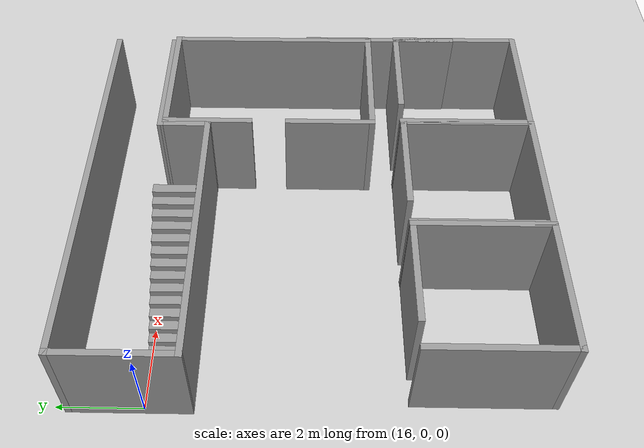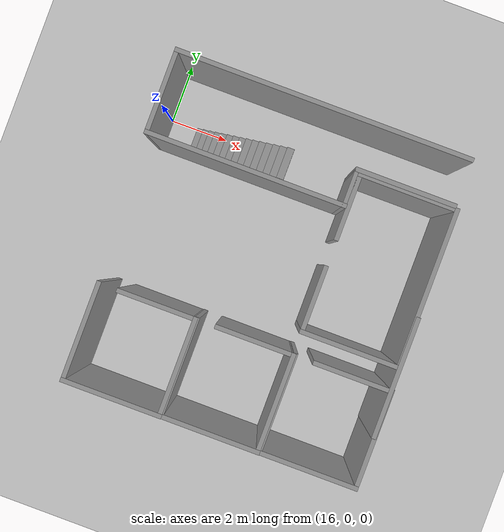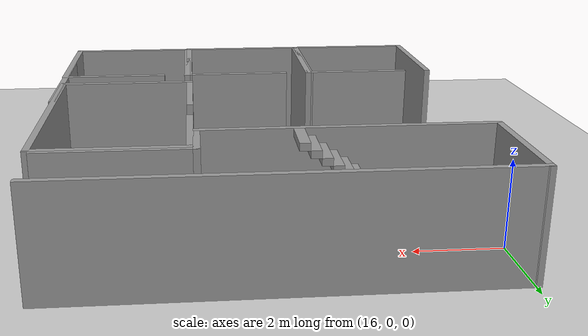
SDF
<sdf version="1.6">
 <world name="default">
  <model name="ground_plane">
   <static>1</static>
   <link name="link">
    <collision name="collision">
     <geometry><plane><normal>0 0 1</normal><size>100 100</size></plane></geometry>
     <surface>
      <contact><collide_bitmask>65535</collide_bitmask></contact>
      <friction><ode><mu>100</mu><mu2>50</mu2></ode></friction>
     </surface>
    </collision>
    <visual name="visual">
     <cast_shadows>0</cast_shadows>
     <geometry><plane><normal>0 0 1</normal><size>100 100</size></plane></geometry>
     <material>
      <script><uri>file://media/materials/scripts/gazebo.material</uri><name>Gazebo/Grey</name></script>
     </material>
    </visual>
   </link>
  </model>
  <model name="4m_wall">
   <pose>25.8395 -5.4603 0 0 -0 0</pose>
   <link name="Wall_0">
    <collision name="Wall_0_Collision">
     <geometry><box><size>4 0.15 2.5</size></box></geometry>
     <pose>0 0 1.25 0 -0 0</pose>
    </collision>
    <visual name="Wall_0_Visual">
     <pose>0 0 1.25 0 -0 0</pose>
     <geometry><box><size>4 0.15 2.5</size></box></geometry>
     <material>
      <script><uri>file://media/materials/scripts/gazebo.material</uri><name>Gazebo/Grey</name></script>
      <ambient>1 1 1 1</ambient>
     </material>
     <meta><layer>0</layer></meta>
    </visual>
    <pose>0 -0 0 0 -0 1.5708</pose>
   </link>
   <static>1</static>
  </model>
  <model name="197B">
   <pose>20.8168 0.32313 0 0 -0 0</pose>
   <link name="Wall_41">
    <collision name="Wall_41_Collision">
     <geometry><box><size>6.668 0.15 2.5</size></box></geometry>
     <pose>0 0 1.25 0 -0 0</pose>
    </collision>
    <visual name="Wall_41_Visual">
     <pose>0 0 1.25 0 -0 0</pose>
     <geometry><box><size>6.668 0.15 2.5</size></box></geometry>
     <material>
      <script><uri>file://media/materials/scripts/gazebo.material</uri><name>Gazebo/Grey</name></script>
      <ambient>1 1 1 1</ambient>
     </material>
     <meta><layer>0</layer></meta>
    </visual>
    <pose>-1.59159 -1.34983 0 0 -0 0</pose>
   </link>
   <link name="Wall_42">
    <collision name="Wall_42_Collision">
     <geometry><box><size>1.333 0.15 2.5</size></box></geometry>
     <pose>0 0 1.25 0 -0 0</pose>
    </collision>
    <visual name="Wall_42_Visual">
     <pose>0 0 1.25 0 -0 0</pose>
     <geometry><box><size>1.333 0.15 2.5</size></box></geometry>
     <material>
      <script><uri>file://media/materials/scripts/gazebo.material</uri><name>Gazebo/Grey</name></script>
      <ambient>1 1 1 1</ambient>
     </material>
     <meta><layer>0</layer></meta>
    </visual>
    <pose>1.6672 -0.75844 0 0 -0 1.57114</pose>
   </link>
   <link name="Wall_43">
    <collision name="Wall_43_Collision">
     <geometry><box><size>3.334 0.15 2.5</size></box></geometry>
     <pose>0 0 1.25 0 -0 0</pose>
    </collision>
    <visual name="Wall_43_Visual">
     <pose>0 0 1.25 0 -0 0</pose>
     <geometry><box><size>3.334 0.15 2.5</size></box></geometry>
     <material>
      <script><uri>file://media/materials/scripts/gazebo.material</uri><name>Gazebo/Grey</name></script>
      <ambient>1 1 1 1</ambient>
     </material>
     <meta><layer>0</layer></meta>
    </visual>
    <pose>3.259 -0.167046 0 0 -0 0</pose>
   </link>
   <link name="Wall_45">
    <collision name="Wall_45_Collision">
     <geometry><box><size>9.85211 0.15 2.5</size></box></geometry>
     <pose>0 0 1.25 0 -0 0</pose>
    </collision>
    <visual name="Wall_45_Visual">
     <pose>0 0 1.25 0 -0 0</pose>
     <geometry><box><size>9.85211 0.15 2.5</size></box></geometry>
     <material>
      <script><uri>file://media/materials/scripts/gazebo.material</uri><name>Gazebo/Grey</name></script>
      <ambient>1 1 1 1</ambient>
     </material>
     <meta><layer>0</layer></meta>
    </visual>
    <pose>0 1.34995 0 0 -0 3.14159</pose>
   </link>
   <link name="Wall_46">
    <collision name="Wall_46_Collision">
     <geometry><box><size>2.84979 0.15 2.5</size></box></geometry>
     <pose>0 0 1.25 0 -0 0</pose>
    </collision>
    <visual name="Wall_46_Visual">
     <pose>0 0 1.25 0 -0 0</pose>
     <geometry><box><size>2.84979 0.15 2.5</size></box></geometry>
     <material>
      <script><uri>file://media/materials/scripts/gazebo.material</uri><name>Gazebo/Grey</name></script>
      <ambient>1 1 1 1</ambient>
     </material>
     <meta><layer>0</layer></meta>
    </visual>
    <pose>-4.8508 6.1e-05 0 0 -0 -1.57065</pose>
   </link>
   <static>1</static>
  </model>
  <model name="Staircase_2">
   <pose>18.6912 -0.447093 0 0 -0 0</pose>
   <link name="Stairs_0">
    <visual name="Stairs_0_Visual_0">
     <pose>-1.63333 -0 0.083333 0 -0 1.5708</pose>
     <geometry><box><size>1 0.233333 0.166667</size></box></geometry>
     <material>
      <script><uri>file://media/materials/scripts/gazebo.material</uri><name>Gazebo/Grey</name></script>
      <ambient>1 1 1 1</ambient>
     </material>
     <meta><layer>0</layer></meta>
    </visual>
    <collision name="Stairs_0_Collision_0">
     <geometry><box><size>1 0.233333 0.166667</size></box></geometry>
     <pose>-1.63333 -0 0.083333 0 -0 1.5708</pose>
    </collision>
    <visual name="Stairs_0_Visual_1">
     <pose>-1.4 -0 0.25 0 -0 1.5708</pose>
     <geometry><box><size>1 0.233333 0.166667</size></box></geometry>
     <material>
      <script><uri>file://media/materials/scripts/gazebo.material</uri><name>Gazebo/Grey</name></script>
      <ambient>1 1 1 1</ambient>
     </material>
     <meta><layer>0</layer></meta>
    </visual>
    <collision name="Stairs_0_Collision_1">
     <geometry><box><size>1 0.233333 0.166667</size></box></geometry>
     <pose>-1.4 -0 0.25 0 -0 1.5708</pose>
    </collision>
    <visual name="Stairs_0_Visual_2">
     <pose>-1.16667 -0 0.416667 0 -0 1.5708</pose>
     <geometry><box><size>1 0.233333 0.166667</size></box></geometry>
     <material>
      <script><uri>file://media/materials/scripts/gazebo.material</uri><name>Gazebo/Grey</name></script>
      <ambient>1 1 1 1</ambient>
     </material>
     <meta><layer>0</layer></meta>
    </visual>
    <collision name="Stairs_0_Collision_2">
     <geometry><box><size>1 0.233333 0.166667</size></box></geometry>
     <pose>-1.16667 -0 0.416667 0 -0 1.5708</pose>
    </collision>
    <visual name="Stairs_0_Visual_3">
     <pose>-0.933333 -0 0.583333 0 -0 1.5708</pose>
     <geometry><box><size>1 0.233333 0.166667</size></box></geometry>
     <material>
      <script><uri>file://media/materials/scripts/gazebo.material</uri><name>Gazebo/Grey</name></script>
      <ambient>1 1 1 1</ambient>
     </material>
     <meta><layer>0</layer></meta>
    </visual>
    <collision name="Stairs_0_Collision_3">
     <geometry><box><size>1 0.233333 0.166667</size></box></geometry>
     <pose>-0.933333 -0 0.583333 0 -0 1.5708</pose>
    </collision>
    <visual name="Stairs_0_Visual_4">
     <pose>-0.7 0 0.75 0 -0 1.5708</pose>
     <geometry><box><size>1 0.233333 0.166667</size></box></geometry>
     <material>
      <script><uri>file://media/materials/scripts/gazebo.material</uri><name>Gazebo/Grey</name></script>
      <ambient>1 1 1 1</ambient>
     </material>
     <meta><layer>0</layer></meta>
    </visual>
    <collision name="Stairs_0_Collision_4">
     <geometry><box><size>1 0.233333 0.166667</size></box></geometry>
     <pose>-0.7 0 0.75 0 -0 1.5708</pose>
    </collision>
    <visual name="Stairs_0_Visual_5">
     <pose>-0.466667 0 0.916667 0 -0 1.5708</pose>
     <geometry><box><size>1 0.233333 0.166667</size></box></geometry>
     <material>
      <script><uri>file://media/materials/scripts/gazebo.material</uri><name>Gazebo/Grey</name></script>
      <ambient>1 1 1 1</ambient>
     </material>
     <meta><layer>0</layer></meta>
    </visual>
    <collision name="Stairs_0_Collision_5">
     <geometry><box><size>1 0.233333 0.166667</size></box></geometry>
     <pose>-0.466667 0 0.916667 0 -0 1.5708</pose>
    </collision>
    <visual name="Stairs_0_Visual_6">
     <pose>-0.233333 0 1.08333 0 -0 1.5708</pose>
     <geometry><box><size>1 0.233333 0.166667</size></box></geometry>
     <material>
      <script><uri>file://media/materials/scripts/gazebo.material</uri><name>Gazebo/Grey</name></script>
      <ambient>1 1 1 1</ambient>
     </material>
     <meta><layer>0</layer></meta>
    </visual>
    <collision name="Stairs_0_Collision_6">
     <geometry><box><size>1 0.233333 0.166667</size></box></geometry>
     <pose>-0.233333 0 1.08333 0 -0 1.5708</pose>
    </collision>
    <visual name="Stairs_0_Visual_7">
     <pose>0 0 1.25 0 -0 1.5708</pose>
     <geometry><box><size>1 0.233333 0.166667</size></box></geometry>
     <material>
      <script><uri>file://media/materials/scripts/gazebo.material</uri><name>Gazebo/Grey</name></script>
      <ambient>1 1 1 1</ambient>
     </material>
     <meta><layer>0</layer></meta>
    </visual>
    <collision name="Stairs_0_Collision_7">
     <geometry><box><size>1 0.233333 0.166667</size></box></geometry>
     <pose>0 0 1.25 0 -0 1.5708</pose>
    </collision>
    <visual name="Stairs_0_Visual_8">
     <pose>0.233333 0 1.41667 0 -0 1.5708</pose>
     <geometry><box><size>1 0.233333 0.166667</size></box></geometry>
     <material>
      <script><uri>file://media/materials/scripts/gazebo.material</uri><name>Gazebo/Grey</name></script>
      <ambient>1 1 1 1</ambient>
     </material>
     <meta><layer>0</layer></meta>
    </visual>
    <collision name="Stairs_0_Collision_8">
     <geometry><box><size>1 0.233333 0.166667</size></box></geometry>
     <pose>0.233333 0 1.41667 0 -0 1.5708</pose>
    </collision>
    <visual name="Stairs_0_Visual_9">
     <pose>0.466667 0 1.58333 0 -0 1.5708</pose>
     <geometry><box><size>1 0.233333 0.166667</size></box></geometry>
     <material>
      <script><uri>file://media/materials/scripts/gazebo.material</uri><name>Gazebo/Grey</name></script>
      <ambient>1 1 1 1</ambient>
     </material>
     <meta><layer>0</layer></meta>
    </visual>
    <collision name="Stairs_0_Collision_9">
     <geometry><box><size>1 0.233333 0.166667</size></box></geometry>
     <pose>0.466667 0 1.58333 0 -0 1.5708</pose>
    </collision>
    <visual name="Stairs_0_Visual_10">
     <pose>0.7 0 1.75 0 -0 1.5708</pose>
     <geometry><box><size>1 0.233333 0.166667</size></box></geometry>
     <material>
      <script><uri>file://media/materials/scripts/gazebo.material</uri><name>Gazebo/Grey</name></script>
      <ambient>1 1 1 1</ambient>
     </material>
     <meta><layer>0</layer></meta>
    </visual>
    <collision name="Stairs_0_Collision_10">
     <geometry><box><size>1 0.233333 0.166667</size></box></geometry>
     <pose>0.7 0 1.75 0 -0 1.5708</pose>
    </collision>
    <visual name="Stairs_0_Visual_11">
     <pose>0.933334 0 1.91667 0 -0 1.5708</pose>
     <geometry><box><size>1 0.233333 0.166667</size></box></geometry>
     <material>
      <script><uri>file://media/materials/scripts/gazebo.material</uri><name>Gazebo/Grey</name></script>
      <ambient>1 1 1 1</ambient>
     </material>
     <meta><layer>0</layer></meta>
    </visual>
    <collision name="Stairs_0_Collision_11">
     <geometry><box><size>1 0.233333 0.166667</size></box></geometry>
     <pose>0.933334 0 1.91667 0 -0 1.5708</pose>
    </collision>
    <visual name="Stairs_0_Visual_12">
     <pose>1.16667 0 2.08333 0 -0 1.5708</pose>
     <geometry><box><size>1 0.233333 0.166667</size></box></geometry>
     <material>
      <script><uri>file://media/materials/scripts/gazebo.material</uri><name>Gazebo/Grey</name></script>
      <ambient>1 1 1 1</ambient>
     </material>
     <meta><layer>0</layer></meta>
    </visual>
    <collision name="Stairs_0_Collision_12">
     <geometry><box><size>1 0.233333 0.166667</size></box></geometry>
     <pose>1.16667 0 2.08333 0 -0 1.5708</pose>
    </collision>
    <visual name="Stairs_0_Visual_13">
     <pose>1.4 0 2.25 0 -0 1.5708</pose>
     <geometry><box><size>1 0.233333 0.166667</size></box></geometry>
     <material>
      <script><uri>file://media/materials/scripts/gazebo.material</uri><name>Gazebo/Grey</name></script>
      <ambient>1 1 1 1</ambient>
     </material>
     <meta><layer>0</layer></meta>
    </visual>
    <collision name="Stairs_0_Collision_13">
     <geometry><box><size>1 0.233333 0.166667</size></box></geometry>
     <pose>1.4 0 2.25 0 -0 1.5708</pose>
    </collision>
    <visual name="Stairs_0_Visual_14">
     <pose>1.63333 0 2.41667 0 -0 1.5708</pose>
     <geometry><box><size>1 0.233333 0.166667</size></box></geometry>
     <material>
      <script><uri>file://media/materials/scripts/gazebo.material</uri><name>Gazebo/Grey</name></script>
      <ambient>1 1 1 1</ambient>
     </material>
     <meta><layer>0</layer></meta>
    </visual>
    <collision name="Stairs_0_Collision_14">
     <geometry><box><size>1 0.233333 0.166667</size></box></geometry>
     <pose>1.63333 0 2.41667 0 -0 1.5708</pose>
    </collision>
   </link>
   <static>1</static>
  </model>
  <model name="102Room2">
   <link name="Wall_41">
    <pose>0 -2.59 0 0 -0 0</pose>
    <visual name="Wall_41_Visual">
     <pose>0 0 1.25 0 -0 0</pose>
     <geometry><box><size>3.33433 0.15 2.5</size></box></geometry>
     <material>
      <script><uri>file://media/materials/scripts/gazebo.material</uri><name>Gazebo/Grey</name></script>
      <ambient>1 1 1 1</ambient>
      <shader type="pixel"/>
     </material>
     <meta><layer>0</layer></meta>
    </visual>
    <collision name="Wall_41_Collision">
     <pose>0 0 1.25 0 -0 0</pose>
     <geometry><box><size>3.33433 0.15 2.5</size></box></geometry>
     <surface>
      <friction>
       <ode><mu>1</mu><mu2>1</mu2><fdir1>0 0 0</fdir1><slip1>0</slip1><slip2>0</slip2></ode>
       <torsional>
        <coefficient>1</coefficient>
        <patch_radius>0</patch_radius>
        <surface_radius>0</surface_radius>
        <use_patch_radius>1</use_patch_radius>
        <ode><slip>0</slip></ode>
       </torsional>
      </friction>
      <bounce><restitution_coefficient>0</restitution_coefficient><threshold>1e+06</threshold></bounce>
      <contact>
       <collide_without_contact>0</collide_without_contact>
       <collide_without_contact_bitmask>1</collide_without_contact_bitmask>
       <collide_bitmask>1</collide_bitmask>
       <ode>
        <soft_cfm>0</soft_cfm>
        <soft_erp>0.2</soft_erp>
        <kp>1e+13</kp>
        <kd>1</kd>
        <max_vel>0.01</max_vel>
        <min_depth>0</min_depth>
       </ode>
       <bullet>
        <split_impulse>1</split_impulse>
        <split_impulse_penetration_threshold>-0.01</split_impulse_penetration_threshold>
        <soft_cfm>0</soft_cfm>
        <soft_erp>0.2</soft_erp>
        <kp>1e+13</kp>
        <kd>1</kd>
       </bullet>
      </contact>
     </surface>
    </collision>
   </link>
   <link name="Wall_42">
    <pose>1.592 0 0 0 -0 1.5708</pose>
    <visual name="Wall_42_Visual">
     <pose>0 0 1.25 0 -0 0</pose>
     <geometry><box><size>5.33 0.15 2.5</size></box></geometry>
     <material>
      <script><uri>file://media/materials/scripts/gazebo.material</uri><name>Gazebo/Grey</name></script>
      <ambient>1 1 1 1</ambient>
      <shader type="pixel"/>
     </material>
     <meta><layer>0</layer></meta>
    </visual>
    <collision name="Wall_42_Collision">
     <pose>0 0 1.25 0 -0 0</pose>
     <geometry><box><size>5.33 0.15 2.5</size></box></geometry>
     <surface>
      <friction>
       <ode><mu>1</mu><mu2>1</mu2><fdir1>0 0 0</fdir1><slip1>0</slip1><slip2>0</slip2></ode>
       <torsional>
        <coefficient>1</coefficient>
        <patch_radius>0</patch_radius>
        <surface_radius>0</surface_radius>
        <use_patch_radius>1</use_patch_radius>
        <ode><slip>0</slip></ode>
       </torsional>
      </friction>
      <bounce><restitution_coefficient>0</restitution_coefficient><threshold>1e+06</threshold></bounce>
      <contact>
       <collide_without_contact>0</collide_without_contact>
       <collide_without_contact_bitmask>1</collide_without_contact_bitmask>
       <collide_bitmask>1</collide_bitmask>
       <ode>
        <soft_cfm>0</soft_cfm>
        <soft_erp>0.2</soft_erp>
        <kp>1e+13</kp>
        <kd>1</kd>
        <max_vel>0.01</max_vel>
        <min_depth>0</min_depth>
       </ode>
       <bullet>
        <split_impulse>1</split_impulse>
        <split_impulse_penetration_threshold>-0.01</split_impulse_penetration_threshold>
        <soft_cfm>0</soft_cfm>
        <soft_erp>0.2</soft_erp>
        <kp>1e+13</kp>
        <kd>1</kd>
       </bullet>
      </contact>
     </surface>
    </collision>
   </link>
   <link name="Wall_43">
    <pose>0 2.59 0 0 -0 3.14159</pose>
    <visual name="Wall_43_Visual">
     <pose>0 0 1.25 0 -0 0</pose>
     <geometry><box><size>3.334 0.15 2.5</size></box></geometry>
     <material>
      <script><uri>file://media/materials/scripts/gazebo.material</uri><name>Gazebo/Grey</name></script>
      <ambient>1 1 1 1</ambient>
      <shader type="pixel"/>
     </material>
     <meta><layer>0</layer></meta>
    </visual>
    <collision name="Wall_43_Collision">
     <pose>0 0 1.25 0 -0 0</pose>
     <geometry><box><size>3.334 0.15 2.5</size></box></geometry>
     <surface>
      <friction>
       <ode><mu>1</mu><mu2>1</mu2><fdir1>0 0 0</fdir1><slip1>0</slip1><slip2>0</slip2></ode>
       <torsional>
        <coefficient>1</coefficient>
        <patch_radius>0</patch_radius>
        <surface_radius>0</surface_radius>
        <use_patch_radius>1</use_patch_radius>
        <ode><slip>0</slip></ode>
       </torsional>
      </friction>
      <bounce><restitution_coefficient>0</restitution_coefficient><threshold>1e+06</threshold></bounce>
      <contact>
       <collide_without_contact>0</collide_without_contact>
       <collide_without_contact_bitmask>1</collide_without_contact_bitmask>
       <collide_bitmask>1</collide_bitmask>
       <ode>
        <soft_cfm>0</soft_cfm>
        <soft_erp>0.2</soft_erp>
        <kp>1e+13</kp>
        <kd>1</kd>
        <max_vel>0.01</max_vel>
        <min_depth>0</min_depth>
       </ode>
       <bullet>
        <split_impulse>1</split_impulse>
        <split_impulse_penetration_threshold>-0.01</split_impulse_penetration_threshold>
        <soft_cfm>0</soft_cfm>
        <soft_erp>0.2</soft_erp>
        <kp>1e+13</kp>
        <kd>1</kd>
       </bullet>
      </contact>
     </surface>
    </collision>
   </link>
   <link name="Wall_46">
    <pose>-1.592 1.54 0 0 0 -1.5708</pose>
    <visual name="Wall_46_Visual">
     <pose>0 0 1.25 0 -0 0</pose>
     <geometry><box><size>2.25 0.15 2.5</size></box></geometry>
     <material>
      <script><uri>file://media/materials/scripts/gazebo.material</uri><name>Gazebo/Grey</name></script>
      <ambient>1 1 1 1</ambient>
      <shader type="pixel"/>
     </material>
     <meta><layer>0</layer></meta>
    </visual>
    <collision name="Wall_46_Collision">
     <pose>0 0 1.25 0 -0 0</pose>
     <geometry><box><size>2.25 0.15 2.5</size></box></geometry>
     <surface>
      <friction>
       <ode><mu>1</mu><mu2>1</mu2><fdir1>0 0 0</fdir1><slip1>0</slip1><slip2>0</slip2></ode>
       <torsional>
        <coefficient>1</coefficient>
        <patch_radius>0</patch_radius>
        <surface_radius>0</surface_radius>
        <use_patch_radius>1</use_patch_radius>
        <ode><slip>0</slip></ode>
       </torsional>
      </friction>
      <bounce><restitution_coefficient>0</restitution_coefficient><threshold>1e+06</threshold></bounce>
      <contact>
       <collide_without_contact>0</collide_without_contact>
       <collide_without_contact_bitmask>1</collide_without_contact_bitmask>
       <collide_bitmask>1</collide_bitmask>
       <ode>
        <soft_cfm>0</soft_cfm>
        <soft_erp>0.2</soft_erp>
        <kp>1e+13</kp>
        <kd>1</kd>
        <max_vel>0.01</max_vel>
        <min_depth>0</min_depth>
       </ode>
       <bullet>
        <split_impulse>1</split_impulse>
        <split_impulse_penetration_threshold>-0.01</split_impulse_penetration_threshold>
        <soft_cfm>0</soft_cfm>
        <soft_erp>0.2</soft_erp>
        <kp>1e+13</kp>
        <kd>1</kd>
       </bullet>
      </contact>
     </surface>
    </collision>
   </link>
   <link name="Wall_48">
    <pose>-1.592 -1.54 0 0 0 -1.5708</pose>
    <visual name="Wall_48_Visual">
     <pose>0 0 1.25 0 -0 0</pose>
     <geometry><box><size>2.25 0.15 2.5</size></box></geometry>
     <material>
      <script><uri>file://media/materials/scripts/gazebo.material</uri><name>Gazebo/Grey</name></script>
      <ambient>1 1 1 1</ambient>
      <shader type="pixel"/>
     </material>
     <meta><layer>0</layer></meta>
    </visual>
    <collision name="Wall_48_Collision">
     <pose>0 0 1.25 0 -0 0</pose>
     <geometry><box><size>2.25 0.15 2.5</size></box></geometry>
     <surface>
      <friction>
       <ode><mu>1</mu><mu2>1</mu2><fdir1>0 0 0</fdir1><slip1>0</slip1><slip2>0</slip2></ode>
       <torsional>
        <coefficient>1</coefficient>
        <patch_radius>0</patch_radius>
        <surface_radius>0</surface_radius>
        <use_patch_radius>1</use_patch_radius>
        <ode><slip>0</slip></ode>
       </torsional>
      </friction>
      <bounce><restitution_coefficient>0</restitution_coefficient><threshold>1e+06</threshold></bounce>
      <contact>
       <collide_without_contact>0</collide_without_contact>
       <collide_without_contact_bitmask>1</collide_without_contact_bitmask>
       <collide_bitmask>1</collide_bitmask>
       <ode>
        <soft_cfm>0</soft_cfm>
        <soft_erp>0.2</soft_erp>
        <kp>1e+13</kp>
        <kd>1</kd>
        <max_vel>0.01</max_vel>
        <min_depth>0</min_depth>
       </ode>
       <bullet>
        <split_impulse>1</split_impulse>
        <split_impulse_penetration_threshold>-0.01</split_impulse_penetration_threshold>
        <soft_cfm>0</soft_cfm>
        <soft_erp>0.2</soft_erp>
        <kp>1e+13</kp>
        <kd>1</kd>
       </bullet>
      </contact>
     </surface>
    </collision>
   </link>
   <static>1</static>
   <pose>24.2073 -2.54348 0 0 -0 0</pose>
  </model>
  <model name="102Office_6">
   <link name="Wall_13">
    <pose>0 -1.592 0 0 -0 0</pose>
    <visual name="Wall_13_Visual">
     <pose>0 0 1.25 0 -0 0</pose>
     <geometry><box><size>3.334 0.15 2.5</size></box></geometry>
     <material>
      <script><uri>file://media/materials/scripts/gazebo.material</uri><name>Gazebo/Grey</name></script>
      <ambient>1 1 1 1</ambient>
      <shader type="pixel"/>
     </material>
     <meta><layer>0</layer></meta>
    </visual>
    <collision name="Wall_13_Collision">
     <pose>0 0 1.25 0 -0 0</pose>
     <geometry><box><size>3.334 0.15 2.5</size></box></geometry>
     <surface>
      <friction>
       <ode><mu>1</mu><mu2>1</mu2><fdir1>0 0 0</fdir1><slip1>0</slip1><slip2>0</slip2></ode>
       <torsional>
        <coefficient>1</coefficient>
        <patch_radius>0</patch_radius>
        <surface_radius>0</surface_radius>
        <use_patch_radius>1</use_patch_radius>
        <ode><slip>0</slip></ode>
       </torsional>
      </friction>
      <bounce><restitution_coefficient>0</restitution_coefficient><threshold>1e+06</threshold></bounce>
      <contact>
       <collide_without_contact>0</collide_without_contact>
       <collide_without_contact_bitmask>1</collide_without_contact_bitmask>
       <collide_bitmask>1</collide_bitmask>
       <ode>
        <soft_cfm>0</soft_cfm>
        <soft_erp>0.2</soft_erp>
        <kp>1e+13</kp>
        <kd>1</kd>
        <max_vel>0.01</max_vel>
        <min_depth>0</min_depth>
       </ode>
       <bullet>
        <split_impulse>1</split_impulse>
        <split_impulse_penetration_threshold>-0.01</split_impulse_penetration_threshold>
        <soft_cfm>0</soft_cfm>
        <soft_erp>0.2</soft_erp>
        <kp>1e+13</kp>
        <kd>1</kd>
       </bullet>
      </contact>
     </surface>
    </collision>
   </link>
   <link name="Wall_15">
    <pose>-1.592 0 0 0 -0 1.5708</pose>
    <visual name="Wall_15_Visual">
     <pose>0 0 1.25 0 -0 0</pose>
     <geometry><box><size>3.334 0.15 2.5</size></box></geometry>
     <material>
      <script><uri>file://media/materials/scripts/gazebo.material</uri><name>Gazebo/Grey</name></script>
      <ambient>1 1 1 1</ambient>
      <shader type="pixel"/>
     </material>
     <meta><layer>0</layer></meta>
    </visual>
    <collision name="Wall_15_Collision">
     <pose>0 0 1.25 0 -0 0</pose>
     <geometry><box><size>3.334 0.15 2.5</size></box></geometry>
     <surface>
      <friction>
       <ode><mu>1</mu><mu2>1</mu2><fdir1>0 0 0</fdir1><slip1>0</slip1><slip2>0</slip2></ode>
       <torsional>
        <coefficient>1</coefficient>
        <patch_radius>0</patch_radius>
        <surface_radius>0</surface_radius>
        <use_patch_radius>1</use_patch_radius>
        <ode><slip>0</slip></ode>
       </torsional>
      </friction>
      <bounce><restitution_coefficient>0</restitution_coefficient><threshold>1e+06</threshold></bounce>
      <contact>
       <collide_without_contact>0</collide_without_contact>
       <collide_without_contact_bitmask>1</collide_without_contact_bitmask>
       <collide_bitmask>1</collide_bitmask>
       <ode>
        <soft_cfm>0</soft_cfm>
        <soft_erp>0.2</soft_erp>
        <kp>1e+13</kp>
        <kd>1</kd>
        <max_vel>0.01</max_vel>
        <min_depth>0</min_depth>
       </ode>
       <bullet>
        <split_impulse>1</split_impulse>
        <split_impulse_penetration_threshold>-0.01</split_impulse_penetration_threshold>
        <soft_cfm>0</soft_cfm>
        <soft_erp>0.2</soft_erp>
        <kp>1e+13</kp>
        <kd>1</kd>
       </bullet>
      </contact>
     </surface>
    </collision>
   </link>
   <link name="Wall_17">
    <pose>1.592 0 0 0 -0 1.5708</pose>
    <visual name="Wall_17_Visual">
     <pose>0 0 1.25 0 -0 0</pose>
     <geometry><box><size>3.334 0.15 2.5</size></box></geometry>
     <material>
      <script><uri>file://media/materials/scripts/gazebo.material</uri><name>Gazebo/Grey</name></script>
      <ambient>1 1 1 1</ambient>
      <shader type="pixel"/>
     </material>
     <meta><layer>0</layer></meta>
    </visual>
    <collision name="Wall_17_Collision">
     <pose>0 0 1.25 0 -0 0</pose>
     <geometry><box><size>3.334 0.15 2.5</size></box></geometry>
     <surface>
      <friction>
       <ode><mu>1</mu><mu2>1</mu2><fdir1>0 0 0</fdir1><slip1>0</slip1><slip2>0</slip2></ode>
       <torsional>
        <coefficient>1</coefficient>
        <patch_radius>0</patch_radius>
        <surface_radius>0</surface_radius>
        <use_patch_radius>1</use_patch_radius>
        <ode><slip>0</slip></ode>
       </torsional>
      </friction>
      <bounce><restitution_coefficient>0</restitution_coefficient><threshold>1e+06</threshold></bounce>
      <contact>
       <collide_without_contact>0</collide_without_contact>
       <collide_without_contact_bitmask>1</collide_without_contact_bitmask>
       <collide_bitmask>1</collide_bitmask>
       <ode>
        <soft_cfm>0</soft_cfm>
        <soft_erp>0.2</soft_erp>
        <kp>1e+13</kp>
        <kd>1</kd>
        <max_vel>0.01</max_vel>
        <min_depth>0</min_depth>
       </ode>
       <bullet>
        <split_impulse>1</split_impulse>
        <split_impulse_penetration_threshold>-0.01</split_impulse_penetration_threshold>
        <soft_cfm>0</soft_cfm>
        <soft_erp>0.2</soft_erp>
        <kp>1e+13</kp>
        <kd>1</kd>
       </bullet>
      </contact>
     </surface>
    </collision>
   </link>
   <link name="Wall_19">
    <pose>0.3335 1.592 0 0 -0 3.14159</pose>
    <visual name="Wall_19_Visual">
     <pose>0 0 1.25 0 -0 0</pose>
     <geometry><box><size>2.667 0.15 2.5</size></box></geometry>
     <material>
      <script><uri>file://media/materials/scripts/gazebo.material</uri><name>Gazebo/Grey</name></script>
      <ambient>1 1 1 1</ambient>
      <shader type="pixel"/>
     </material>
     <meta><layer>0</layer></meta>
    </visual>
    <collision name="Wall_19_Collision">
     <pose>0 0 1.25 0 -0 0</pose>
     <geometry><box><size>2.667 0.15 2.5</size></box></geometry>
     <surface>
      <friction>
       <ode><mu>1</mu><mu2>1</mu2><fdir1>0 0 0</fdir1><slip1>0</slip1><slip2>0</slip2></ode>
       <torsional>
        <coefficient>1</coefficient>
        <patch_radius>0</patch_radius>
        <surface_radius>0</surface_radius>
        <use_patch_radius>1</use_patch_radius>
        <ode><slip>0</slip></ode>
       </torsional>
      </friction>
      <bounce><restitution_coefficient>0</restitution_coefficient><threshold>1e+06</threshold></bounce>
      <contact>
       <collide_without_contact>0</collide_without_contact>
       <collide_without_contact_bitmask>1</collide_without_contact_bitmask>
       <collide_bitmask>1</collide_bitmask>
       <ode>
        <soft_cfm>0</soft_cfm>
        <soft_erp>0.2</soft_erp>
        <kp>1e+13</kp>
        <kd>1</kd>
        <max_vel>0.01</max_vel>
        <min_depth>0</min_depth>
       </ode>
       <bullet>
        <split_impulse>1</split_impulse>
        <split_impulse_penetration_threshold>-0.01</split_impulse_penetration_threshold>
        <soft_cfm>0</soft_cfm>
        <soft_erp>0.2</soft_erp>
        <kp>1e+13</kp>
        <kd>1</kd>
       </bullet>
      </contact>
     </surface>
    </collision>
   </link>
   <static>1</static>
   <pose>17.8044 -7.51496 0 0 -0 0</pose>
  </model>
  <model name="102Office_7">
   <link name="Wall_13">
    <pose>0 -1.592 0 0 -0 0</pose>
    <visual name="Wall_13_Visual">
     <pose>0 0 1.25 0 -0 0</pose>
     <geometry><box><size>3.334 0.15 2.5</size></box></geometry>
     <material>
      <script><uri>file://media/materials/scripts/gazebo.material</uri><name>Gazebo/Grey</name></script>
      <ambient>1 1 1 1</ambient>
      <shader type="pixel"/>
     </material>
     <meta><layer>0</layer></meta>
    </visual>
    <collision name="Wall_13_Collision">
     <pose>0 0 1.25 0 -0 0</pose>
     <geometry><box><size>3.334 0.15 2.5</size></box></geometry>
     <surface>
      <friction>
       <ode><mu>1</mu><mu2>1</mu2><fdir1>0 0 0</fdir1><slip1>0</slip1><slip2>0</slip2></ode>
       <torsional>
        <coefficient>1</coefficient>
        <patch_radius>0</patch_radius>
        <surface_radius>0</surface_radius>
        <use_patch_radius>1</use_patch_radius>
        <ode><slip>0</slip></ode>
       </torsional>
      </friction>
      <bounce><restitution_coefficient>0</restitution_coefficient><threshold>1e+06</threshold></bounce>
      <contact>
       <collide_without_contact>0</collide_without_contact>
       <collide_without_contact_bitmask>1</collide_without_contact_bitmask>
       <collide_bitmask>1</collide_bitmask>
       <ode>
        <soft_cfm>0</soft_cfm>
        <soft_erp>0.2</soft_erp>
        <kp>1e+13</kp>
        <kd>1</kd>
        <max_vel>0.01</max_vel>
        <min_depth>0</min_depth>
       </ode>
       <bullet>
        <split_impulse>1</split_impulse>
        <split_impulse_penetration_threshold>-0.01</split_impulse_penetration_threshold>
        <soft_cfm>0</soft_cfm>
        <soft_erp>0.2</soft_erp>
        <kp>1e+13</kp>
        <kd>1</kd>
       </bullet>
      </contact>
     </surface>
    </collision>
   </link>
   <link name="Wall_15">
    <pose>-1.592 0 0 0 -0 1.5708</pose>
    <visual name="Wall_15_Visual">
     <pose>0 0 1.25 0 -0 0</pose>
     <geometry><box><size>3.334 0.15 2.5</size></box></geometry>
     <material>
      <script><uri>file://media/materials/scripts/gazebo.material</uri><name>Gazebo/Grey</name></script>
      <ambient>1 1 1 1</ambient>
      <shader type="pixel"/>
     </material>
     <meta><layer>0</layer></meta>
    </visual>
    <collision name="Wall_15_Collision">
     <pose>0 0 1.25 0 -0 0</pose>
     <geometry><box><size>3.334 0.15 2.5</size></box></geometry>
     <surface>
      <friction>
       <ode><mu>1</mu><mu2>1</mu2><fdir1>0 0 0</fdir1><slip1>0</slip1><slip2>0</slip2></ode>
       <torsional>
        <coefficient>1</coefficient>
        <patch_radius>0</patch_radius>
        <surface_radius>0</surface_radius>
        <use_patch_radius>1</use_patch_radius>
        <ode><slip>0</slip></ode>
       </torsional>
      </friction>
      <bounce><restitution_coefficient>0</restitution_coefficient><threshold>1e+06</threshold></bounce>
      <contact>
       <collide_without_contact>0</collide_without_contact>
       <collide_without_contact_bitmask>1</collide_without_contact_bitmask>
       <collide_bitmask>1</collide_bitmask>
       <ode>
        <soft_cfm>0</soft_cfm>
        <soft_erp>0.2</soft_erp>
        <kp>1e+13</kp>
        <kd>1</kd>
        <max_vel>0.01</max_vel>
        <min_depth>0</min_depth>
       </ode>
       <bullet>
        <split_impulse>1</split_impulse>
        <split_impulse_penetration_threshold>-0.01</split_impulse_penetration_threshold>
        <soft_cfm>0</soft_cfm>
        <soft_erp>0.2</soft_erp>
        <kp>1e+13</kp>
        <kd>1</kd>
       </bullet>
      </contact>
     </surface>
    </collision>
   </link>
   <link name="Wall_17">
    <pose>1.592 0 0 0 -0 1.5708</pose>
    <visual name="Wall_17_Visual">
     <pose>0 0 1.25 0 -0 0</pose>
     <geometry><box><size>3.334 0.15 2.5</size></box></geometry>
     <material>
      <script><uri>file://media/materials/scripts/gazebo.material</uri><name>Gazebo/Grey</name></script>
      <ambient>1 1 1 1</ambient>
      <shader type="pixel"/>
     </material>
     <meta><layer>0</layer></meta>
    </visual>
    <collision name="Wall_17_Collision">
     <pose>0 0 1.25 0 -0 0</pose>
     <geometry><box><size>3.334 0.15 2.5</size></box></geometry>
     <surface>
      <friction>
       <ode><mu>1</mu><mu2>1</mu2><fdir1>0 0 0</fdir1><slip1>0</slip1><slip2>0</slip2></ode>
       <torsional>
        <coefficient>1</coefficient>
        <patch_radius>0</patch_radius>
        <surface_radius>0</surface_radius>
        <use_patch_radius>1</use_patch_radius>
        <ode><slip>0</slip></ode>
       </torsional>
      </friction>
      <bounce><restitution_coefficient>0</restitution_coefficient><threshold>1e+06</threshold></bounce>
      <contact>
       <collide_without_contact>0</collide_without_contact>
       <collide_without_contact_bitmask>1</collide_without_contact_bitmask>
       <collide_bitmask>1</collide_bitmask>
       <ode>
        <soft_cfm>0</soft_cfm>
        <soft_erp>0.2</soft_erp>
        <kp>1e+13</kp>
        <kd>1</kd>
        <max_vel>0.01</max_vel>
        <min_depth>0</min_depth>
       </ode>
       <bullet>
        <split_impulse>1</split_impulse>
        <split_impulse_penetration_threshold>-0.01</split_impulse_penetration_threshold>
        <soft_cfm>0</soft_cfm>
        <soft_erp>0.2</soft_erp>
        <kp>1e+13</kp>
        <kd>1</kd>
       </bullet>
      </contact>
     </surface>
    </collision>
   </link>
   <link name="Wall_19">
    <pose>0.3335 1.592 0 0 -0 3.14159</pose>
    <visual name="Wall_19_Visual">
     <pose>0 0 1.25 0 -0 0</pose>
     <geometry><box><size>2.667 0.15 2.5</size></box></geometry>
     <material>
      <script><uri>file://media/materials/scripts/gazebo.material</uri><name>Gazebo/Grey</name></script>
      <ambient>1 1 1 1</ambient>
      <shader type="pixel"/>
     </material>
     <meta><layer>0</layer></meta>
    </visual>
    <collision name="Wall_19_Collision">
     <pose>0 0 1.25 0 -0 0</pose>
     <geometry><box><size>2.667 0.15 2.5</size></box></geometry>
     <surface>
      <friction>
       <ode><mu>1</mu><mu2>1</mu2><fdir1>0 0 0</fdir1><slip1>0</slip1><slip2>0</slip2></ode>
       <torsional>
        <coefficient>1</coefficient>
        <patch_radius>0</patch_radius>
        <surface_radius>0</surface_radius>
        <use_patch_radius>1</use_patch_radius>
        <ode><slip>0</slip></ode>
       </torsional>
      </friction>
      <bounce><restitution_coefficient>0</restitution_coefficient><threshold>1e+06</threshold></bounce>
      <contact>
       <collide_without_contact>0</collide_without_contact>
       <collide_without_contact_bitmask>1</collide_without_contact_bitmask>
       <collide_bitmask>1</collide_bitmask>
       <ode>
        <soft_cfm>0</soft_cfm>
        <soft_erp>0.2</soft_erp>
        <kp>1e+13</kp>
        <kd>1</kd>
        <max_vel>0.01</max_vel>
        <min_depth>0</min_depth>
       </ode>
       <bullet>
        <split_impulse>1</split_impulse>
        <split_impulse_penetration_threshold>-0.01</split_impulse_penetration_threshold>
        <soft_cfm>0</soft_cfm>
        <soft_erp>0.2</soft_erp>
        <kp>1e+13</kp>
        <kd>1</kd>
       </bullet>
      </contact>
     </surface>
    </collision>
   </link>
   <static>1</static>
   <pose>21.0362 -7.50262 0 0 -0 0</pose>
  </model>
  <model name="102Office_8">
   <link name="Wall_13">
    <pose>0 -1.592 0 0 -0 0</pose>
    <visual name="Wall_13_Visual">
     <pose>0 0 1.25 0 -0 0</pose>
     <geometry><box><size>3.334 0.15 2.5</size></box></geometry>
     <material>
      <script><uri>file://media/materials/scripts/gazebo.material</uri><name>Gazebo/Grey</name></script>
      <ambient>1 1 1 1</ambient>
      <shader type="pixel"/>
     </material>
     <meta><layer>0</layer></meta>
    </visual>
    <collision name="Wall_13_Collision">
     <pose>0 0 1.25 0 -0 0</pose>
     <geometry><box><size>3.334 0.15 2.5</size></box></geometry>
     <surface>
      <friction>
       <ode><mu>1</mu><mu2>1</mu2><fdir1>0 0 0</fdir1><slip1>0</slip1><slip2>0</slip2></ode>
       <torsional>
        <coefficient>1</coefficient>
        <patch_radius>0</patch_radius>
        <surface_radius>0</surface_radius>
        <use_patch_radius>1</use_patch_radius>
        <ode><slip>0</slip></ode>
       </torsional>
      </friction>
      <bounce><restitution_coefficient>0</restitution_coefficient><threshold>1e+06</threshold></bounce>
      <contact>
       <collide_without_contact>0</collide_without_contact>
       <collide_without_contact_bitmask>1</collide_without_contact_bitmask>
       <collide_bitmask>1</collide_bitmask>
       <ode>
        <soft_cfm>0</soft_cfm>
        <soft_erp>0.2</soft_erp>
        <kp>1e+13</kp>
        <kd>1</kd>
        <max_vel>0.01</max_vel>
        <min_depth>0</min_depth>
       </ode>
       <bullet>
        <split_impulse>1</split_impulse>
        <split_impulse_penetration_threshold>-0.01</split_impulse_penetration_threshold>
        <soft_cfm>0</soft_cfm>
        <soft_erp>0.2</soft_erp>
        <kp>1e+13</kp>
        <kd>1</kd>
       </bullet>
      </contact>
     </surface>
    </collision>
   </link>
   <link name="Wall_15">
    <pose>-1.592 0 0 0 -0 1.5708</pose>
    <visual name="Wall_15_Visual">
     <pose>0 0 1.25 0 -0 0</pose>
     <geometry><box><size>3.334 0.15 2.5</size></box></geometry>
     <material>
      <script><uri>file://media/materials/scripts/gazebo.material</uri><name>Gazebo/Grey</name></script>
      <ambient>1 1 1 1</ambient>
      <shader type="pixel"/>
     </material>
     <meta><layer>0</layer></meta>
    </visual>
    <collision name="Wall_15_Collision">
     <pose>0 0 1.25 0 -0 0</pose>
     <geometry><box><size>3.334 0.15 2.5</size></box></geometry>
     <surface>
      <friction>
       <ode><mu>1</mu><mu2>1</mu2><fdir1>0 0 0</fdir1><slip1>0</slip1><slip2>0</slip2></ode>
       <torsional>
        <coefficient>1</coefficient>
        <patch_radius>0</patch_radius>
        <surface_radius>0</surface_radius>
        <use_patch_radius>1</use_patch_radius>
        <ode><slip>0</slip></ode>
       </torsional>
      </friction>
      <bounce><restitution_coefficient>0</restitution_coefficient><threshold>1e+06</threshold></bounce>
      <contact>
       <collide_without_contact>0</collide_without_contact>
       <collide_without_contact_bitmask>1</collide_without_contact_bitmask>
       <collide_bitmask>1</collide_bitmask>
       <ode>
        <soft_cfm>0</soft_cfm>
        <soft_erp>0.2</soft_erp>
        <kp>1e+13</kp>
        <kd>1</kd>
        <max_vel>0.01</max_vel>
        <min_depth>0</min_depth>
       </ode>
       <bullet>
        <split_impulse>1</split_impulse>
        <split_impulse_penetration_threshold>-0.01</split_impulse_penetration_threshold>
        <soft_cfm>0</soft_cfm>
        <soft_erp>0.2</soft_erp>
        <kp>1e+13</kp>
        <kd>1</kd>
       </bullet>
      </contact>
     </surface>
    </collision>
   </link>
   <link name="Wall_17">
    <pose>1.592 0 0 0 -0 1.5708</pose>
    <visual name="Wall_17_Visual">
     <pose>0 0 1.25 0 -0 0</pose>
     <geometry><box><size>3.334 0.15 2.5</size></box></geometry>
     <material>
      <script><uri>file://media/materials/scripts/gazebo.material</uri><name>Gazebo/Grey</name></script>
      <ambient>1 1 1 1</ambient>
      <shader type="pixel"/>
     </material>
     <meta><layer>0</layer></meta>
    </visual>
    <collision name="Wall_17_Collision">
     <pose>0 0 1.25 0 -0 0</pose>
     <geometry><box><size>3.334 0.15 2.5</size></box></geometry>
     <surface>
      <friction>
       <ode><mu>1</mu><mu2>1</mu2><fdir1>0 0 0</fdir1><slip1>0</slip1><slip2>0</slip2></ode>
       <torsional>
        <coefficient>1</coefficient>
        <patch_radius>0</patch_radius>
        <surface_radius>0</surface_radius>
        <use_patch_radius>1</use_patch_radius>
        <ode><slip>0</slip></ode>
       </torsional>
      </friction>
      <bounce><restitution_coefficient>0</restitution_coefficient><threshold>1e+06</threshold></bounce>
      <contact>
       <collide_without_contact>0</collide_without_contact>
       <collide_without_contact_bitmask>1</collide_without_contact_bitmask>
       <collide_bitmask>1</collide_bitmask>
       <ode>
        <soft_cfm>0</soft_cfm>
        <soft_erp>0.2</soft_erp>
        <kp>1e+13</kp>
        <kd>1</kd>
        <max_vel>0.01</max_vel>
        <min_depth>0</min_depth>
       </ode>
       <bullet>
        <split_impulse>1</split_impulse>
        <split_impulse_penetration_threshold>-0.01</split_impulse_penetration_threshold>
        <soft_cfm>0</soft_cfm>
        <soft_erp>0.2</soft_erp>
        <kp>1e+13</kp>
        <kd>1</kd>
       </bullet>
      </contact>
     </surface>
    </collision>
   </link>
   <link name="Wall_19">
    <pose>0.3335 1.592 0 0 -0 3.14159</pose>
    <visual name="Wall_19_Visual">
     <pose>0 0 1.25 0 -0 0</pose>
     <geometry><box><size>2.667 0.15 2.5</size></box></geometry>
     <material>
      <script><uri>file://media/materials/scripts/gazebo.material</uri><name>Gazebo/Grey</name></script>
      <ambient>1 1 1 1</ambient>
      <shader type="pixel"/>
     </material>
     <meta><layer>0</layer></meta>
    </visual>
    <collision name="Wall_19_Collision">
     <pose>0 0 1.25 0 -0 0</pose>
     <geometry><box><size>2.667 0.15 2.5</size></box></geometry>
     <surface>
      <friction>
       <ode><mu>1</mu><mu2>1</mu2><fdir1>0 0 0</fdir1><slip1>0</slip1><slip2>0</slip2></ode>
       <torsional>
        <coefficient>1</coefficient>
        <patch_radius>0</patch_radius>
        <surface_radius>0</surface_radius>
        <use_patch_radius>1</use_patch_radius>
        <ode><slip>0</slip></ode>
       </torsional>
      </friction>
      <bounce><restitution_coefficient>0</restitution_coefficient><threshold>1e+06</threshold></bounce>
      <contact>
       <collide_without_contact>0</collide_without_contact>
       <collide_without_contact_bitmask>1</collide_without_contact_bitmask>
       <collide_bitmask>1</collide_bitmask>
       <ode>
        <soft_cfm>0</soft_cfm>
        <soft_erp>0.2</soft_erp>
        <kp>1e+13</kp>
        <kd>1</kd>
        <max_vel>0.01</max_vel>
        <min_depth>0</min_depth>
       </ode>
       <bullet>
        <split_impulse>1</split_impulse>
        <split_impulse_penetration_threshold>-0.01</split_impulse_penetration_threshold>
        <soft_cfm>0</soft_cfm>
        <soft_erp>0.2</soft_erp>
        <kp>1e+13</kp>
        <kd>1</kd>
       </bullet>
      </contact>
     </surface>
    </collision>
   </link>
   <static>1</static>
   <pose>24.2696 -7.49084 0 0 -0 0</pose>
  </model>
 </world>
</sdf>
